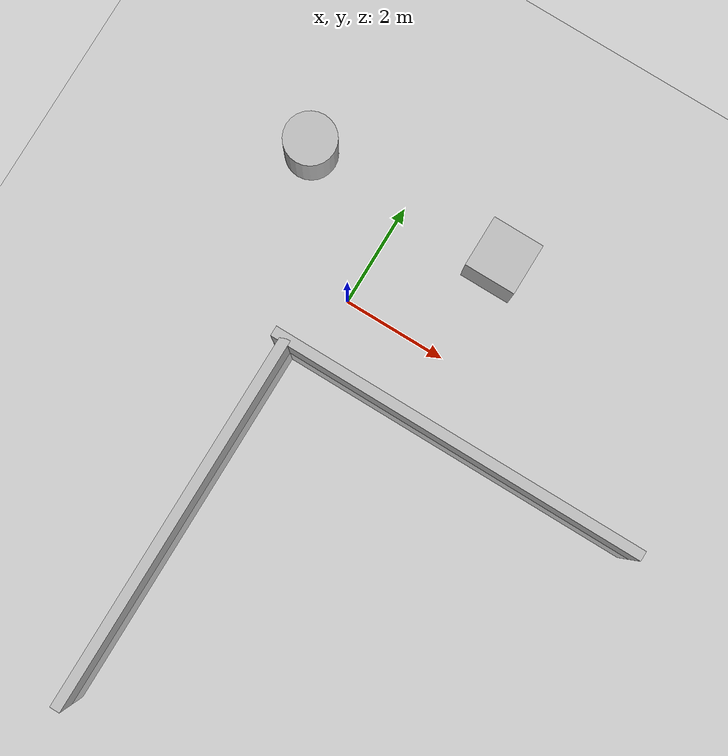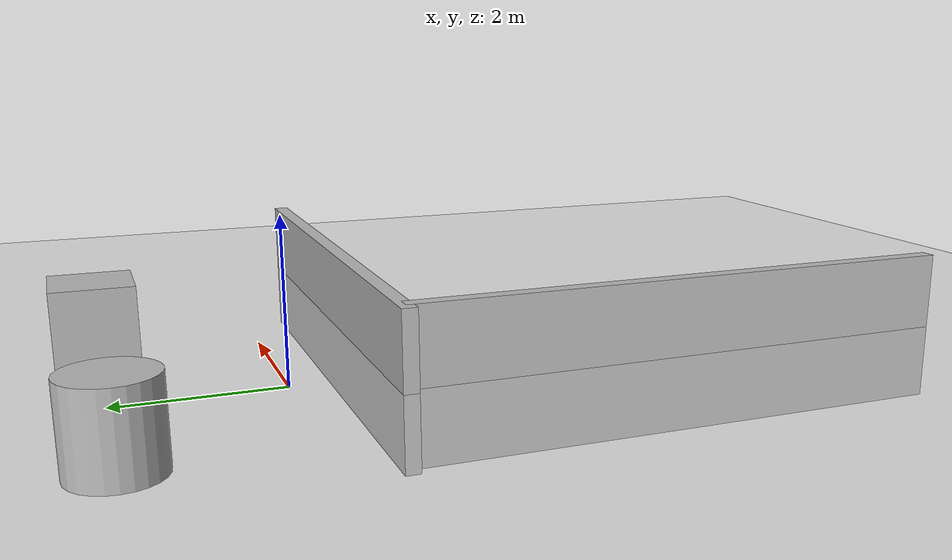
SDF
<?xml version="1.0" ?>
<sdf version="1.6">
  <world name="default">
    <include>
      <uri>model://ground_plane</uri>
    </include>
    <include>
      <uri>model://sun</uri>
    </include>
    <model name="box">
      <pose>2.0 2.0 0.5 0 0 0</pose>
      <link name="link">
        <collision name="collision">
          <geometry>
            <box>
              <size>1 1 1</size>
            </box>
          </geometry>
        </collision>
        <visual name="visual">
          <geometry>
            <box>
              <size>1 1 1</size>
            </box>
          </geometry>
        </visual>
      </link>
    </model>
    <model name="cylinder">
      <pose>-2.0 2.0 0.5 0 0 0</pose>
      <link name="link">
        <collision name="collision">
          <geometry>
            <cylinder>
              <radius>0.5</radius>
              <length>1.0</length>
            </cylinder>
          </geometry>
        </collision>
        <visual name="visual">
          <geometry>
            <cylinder>
              <radius>0.5</radius>
              <length>1.0</length>
            </cylinder>
          </geometry>
        </visual>
      </link>
    </model>
    <model name='wall_1'>
      <static>1</static>
      <pose frame=''>-0.5 -5 0 0 -0 1.5707</pose>
      <link name='link'>
        <collision name='collision'>
          <geometry>
            <box>
              <size>7.5 0.2 2</size>
            </box>
          </geometry>
        </collision>
        <visual name='visual'>
          <geometry>
            <box>
              <size>7.5 0.2 2</size>
            </box>
          </geometry>
        </visual>
      </link>
    </model>
    <model name='wall_2'>
      <static>1</static>
      <pose frame=''>3 -1.25 0 0 -0 0</pose>
      <link name='link'>
        <collision name='collision'>
          <geometry>
            <box>
              <size>7.5 0.2 2</size>
            </box>
          </geometry>
        </collision>
        <visual name='visual'>
          <geometry>
            <box>
              <size>7.5 0.2 2</size>
            </box>
          </geometry>
        </visual>
      </link>
    </model>
  </world>
</sdf>
